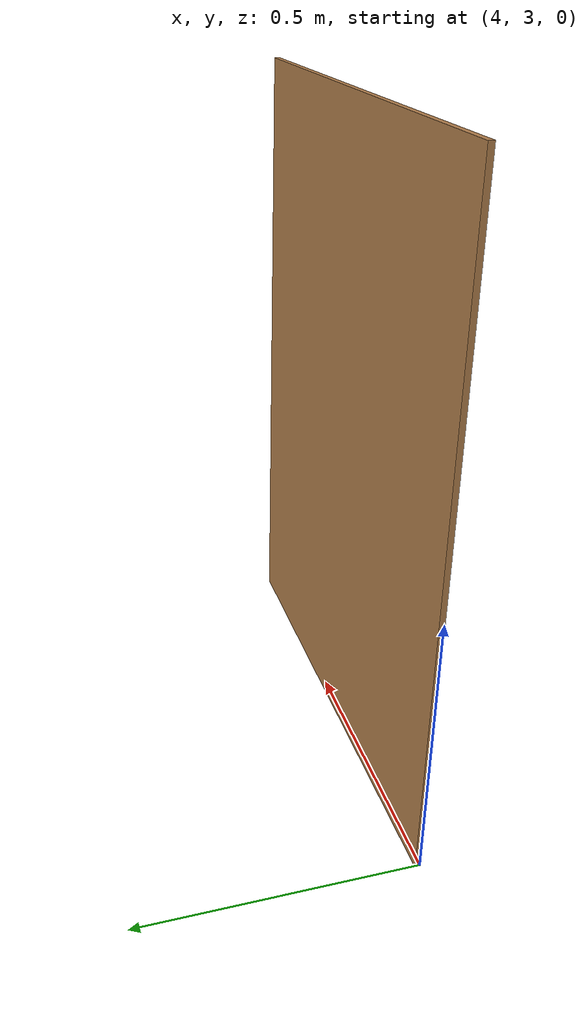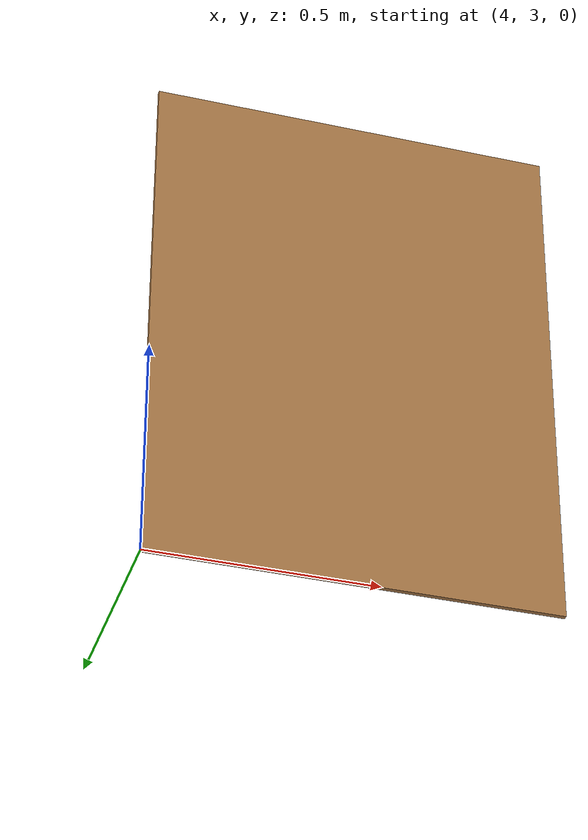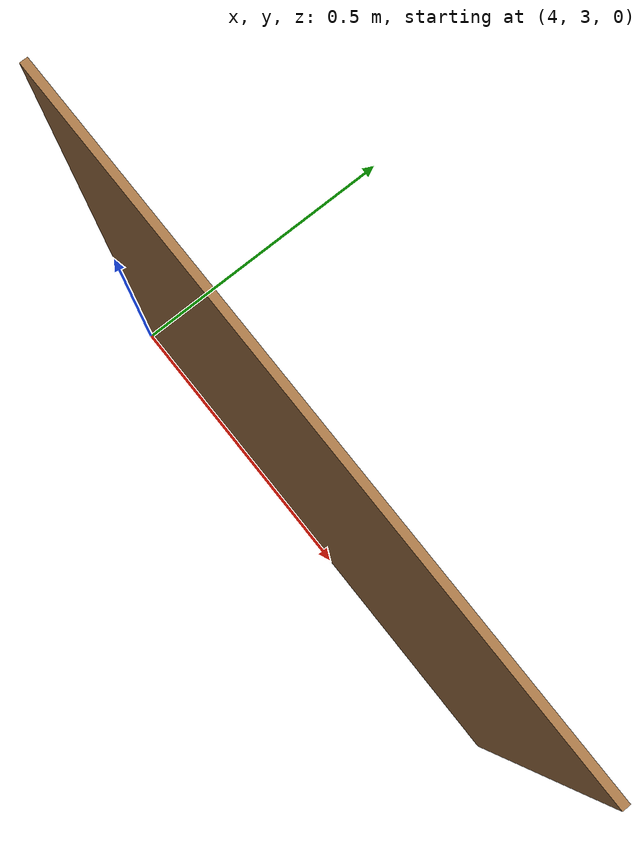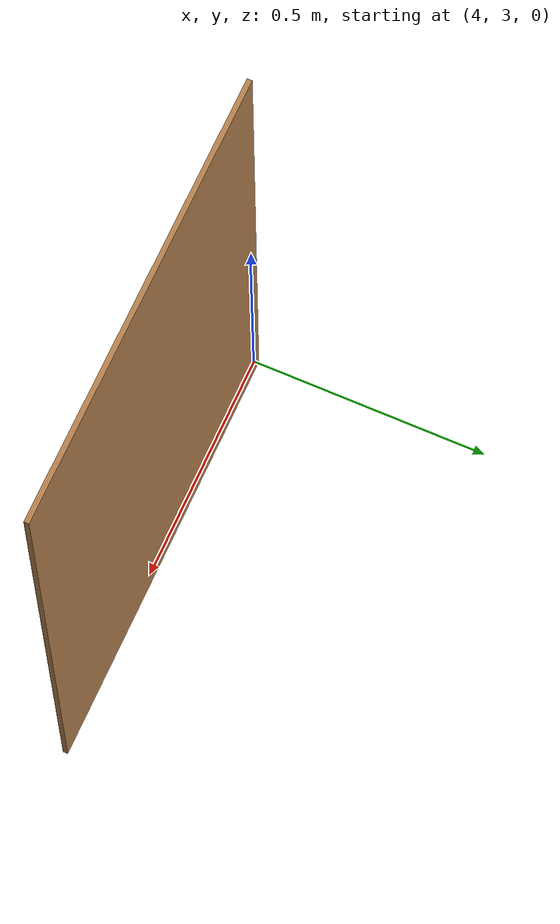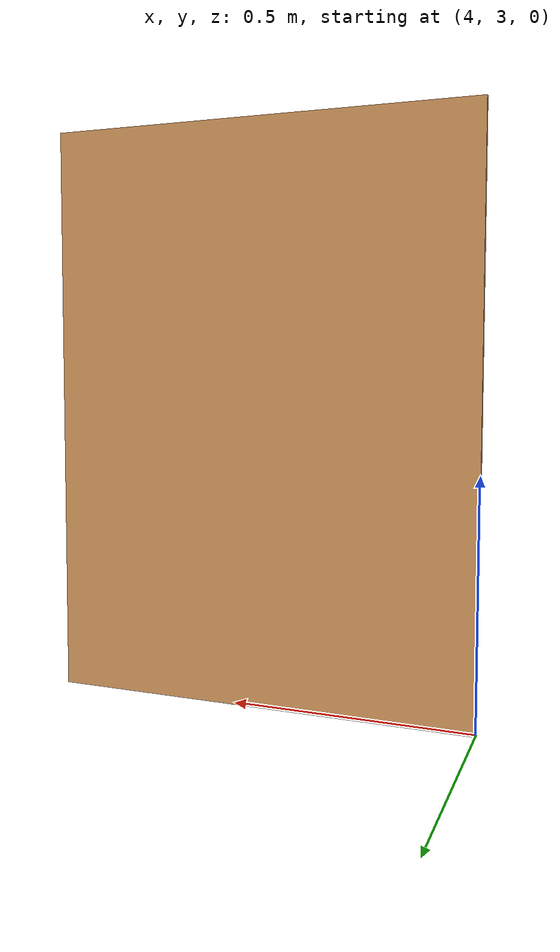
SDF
<!-- -*- mode: XML -*- -->
<sdf version='1.4'>
  <model name='elevator'>
      <static>1</static>
      <link name='link'>
        <inertial>
          <mass>1</mass>
        </inertial>
        <collision name='back'>
          <pose>0 0.005 0.6 0 -0 0</pose>
          <geometry>
            <box>
              <size>0.9 0.01 1.2</size>
            </box>
          </geometry>
          <max_contacts>10</max_contacts>
          <surface>
            <bounce/>
            <friction>
              <ode/>
            </friction>
            <contact>
              <ode/>
            </contact>
          </surface>
        </collision>
        <visual name='visual1'>
          <pose>0 0.005 0.6 0 -0 0</pose>
          <geometry>
            <box>
              <size>0.9 0.01 1.2</size>
            </box>
          </geometry>
          <material>
            <script>
              <uri>file://media/materials/scripts/gazebo.material</uri>
              <name>Gazebo/Wood</name>
            </script>
          </material>
        </visual>
        <collision name='left_side'>
          <pose>0.45 -0.195 0.6 0 -0 0</pose>
          <geometry>
            <box>
              <size>0.02 0.4 1.2</size>
            </box>
          </geometry>
          <max_contacts>10</max_contacts>
          <surface>
            <bounce/>
            <friction>
              <ode/>
            </friction>
            <contact>
              <ode/>
            </contact>
          </surface>
        </collision>
      </link>
      <pose>4.44782 3 0 0 -0 0</pose>
    </model>

</sdf>
